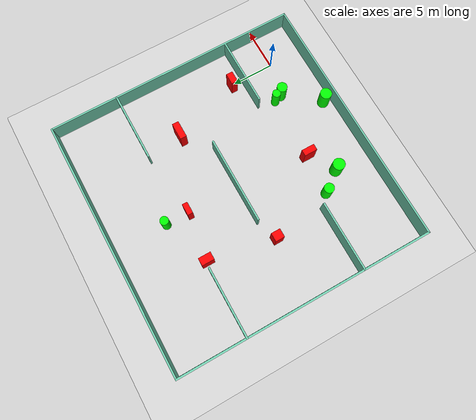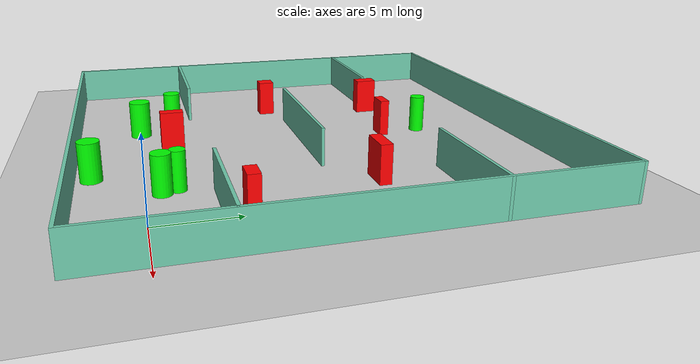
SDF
<sdf version="1.7">
 <world name="default">
  <light name="sun" type="directional">
   <pose>0 0 10 0 -0 0</pose>
   <diffuse>0.8 0.8 0.8 1</diffuse>
   <specular>0.2 0.2 0.2 1</specular>
   <attenuation>
    <range>1000</range>
    <constant>0.9</constant>
    <linear>0.01</linear>
    <quadratic>0.001</quadratic>
   </attenuation>
   <direction>-0.5 0.1 -0.9</direction>
   <spot><inner_angle>0</inner_angle><outer_angle>0</outer_angle><falloff>0</falloff></spot>
  </light>
  <model name="ground_plane">
   <static>1</static>
   <link name="link">
    <collision name="collision">
     <geometry><plane><normal>0 0 1</normal><size>100 100</size></plane></geometry>
     <surface>
      <contact><collide_bitmask>65535</collide_bitmask></contact>
      <friction><ode><mu>100</mu><mu2>50</mu2></ode></friction>
     </surface>
    </collision>
    <visual name="visual">
     <cast_shadows>0</cast_shadows>
     <geometry><plane><normal>0 0 1</normal><size>100 100</size></plane></geometry>
     <material>
      <script><uri>file://media/materials/scripts/gazebo.material</uri><name>Gazebo/Grey</name></script>
     </material>
    </visual>
   </link>
  </model>
  <gravity>0 0 -9.8</gravity>
  <magnetic_field>6e-06 2.3e-05 -4.2e-05</magnetic_field>
  <atmosphere type="adiabatic"/>
  <physics type="ode">
   <max_step_size>0.001</max_step_size>
   <real_time_factor>1</real_time_factor>
   <real_time_update_rate>1000</real_time_update_rate>
  </physics>
  <scene><ambient>0.4 0.4 0.4 1</ambient><background>0.7 0.7 0.7 1</background><shadows>1</shadows></scene>
  <spherical_coordinates>
   <surface_model>EARTH_WGS84</surface_model>
   <latitude_deg>0</latitude_deg>
   <longitude_deg>0</longitude_deg>
   <elevation>0</elevation>
   <heading_deg>0</heading_deg>
  </spherical_coordinates>
  <model name="my_base_walls">
   <link name="Wall_10">
    <collision name="Wall_10_Collision">
     <geometry><box><size>8.2 0.2 2.5</size></box></geometry>
     <pose>0 0 1.25 0 -0 0</pose>
    </collision>
    <visual name="Wall_10_Visual">
     <pose>0 0 1.25 0 -0 0</pose>
     <geometry><box><size>8.2 0.2 2.5</size></box></geometry>
     <material>
      <script><uri>file://media/materials/scripts/gazebo.material</uri><name>Gazebo/Grey</name></script>
      <ambient>0.435294 0.796078 0.67451 1</ambient>
     </material>
     <meta><layer>0</layer></meta>
    </visual>
    <pose>-11 -7 0 0 -0 0</pose>
   </link>
   <link name="Wall_12">
    <collision name="Wall_12_Collision">
     <geometry><box><size>8.2 0.2 2.5</size></box></geometry>
     <pose>0 0 1.25 0 -0 0</pose>
    </collision>
    <visual name="Wall_12_Visual">
     <pose>0 0 1.25 0 -0 0</pose>
     <geometry><box><size>8.2 0.2 2.5</size></box></geometry>
     <material>
      <script><uri>file://media/materials/scripts/gazebo.material</uri><name>Gazebo/Grey</name></script>
      <ambient>0.435294 0.796078 0.67451 1</ambient>
     </material>
     <meta><layer>0</layer></meta>
    </visual>
    <pose>-11 7 0 0 -0 0</pose>
   </link>
   <link name="Wall_14">
    <collision name="Wall_14_Collision">
     <geometry><box><size>8.2 0.2 2.5</size></box></geometry>
     <pose>0 0 1.25 0 -0 0</pose>
    </collision>
    <visual name="Wall_14_Visual">
     <pose>0 0 1.25 0 -0 0</pose>
     <geometry><box><size>8.2 0.2 2.5</size></box></geometry>
     <material>
      <script><uri>file://media/materials/scripts/gazebo.material</uri><name>Gazebo/Grey</name></script>
      <ambient>0.435294 0.796078 0.67451 1</ambient>
     </material>
     <meta><layer>0</layer></meta>
    </visual>
    <pose>11 7 0 0 -0 3.14159</pose>
   </link>
   <link name="Wall_16">
    <collision name="Wall_16_Collision">
     <geometry><box><size>10.2 0.2 2.5</size></box></geometry>
     <pose>0 0 1.25 0 -0 0</pose>
    </collision>
    <visual name="Wall_16_Visual">
     <pose>0 0 1.25 0 -0 0</pose>
     <geometry><box><size>10.2 0.2 2.5</size></box></geometry>
     <material>
      <script><uri>file://media/materials/scripts/gazebo.material</uri><name>Gazebo/Grey</name></script>
      <ambient>0.435294 0.796078 0.67451 1</ambient>
     </material>
     <meta><layer>0</layer></meta>
    </visual>
    <pose>0 0 0 0 -0 3.14159</pose>
   </link>
   <link name="Wall_2">
    <collision name="Wall_2_Collision">
     <geometry><box><size>30.2 0.2 2.5</size></box></geometry>
     <pose>0 0 1.25 0 -0 0</pose>
    </collision>
    <visual name="Wall_2_Visual">
     <pose>0 0 1.25 0 -0 0</pose>
     <geometry><box><size>30.2 0.2 2.5</size></box></geometry>
     <material>
      <script><uri>file://media/materials/scripts/gazebo.material</uri><name>Gazebo/Grey</name></script>
      <ambient>0.435294 0.796078 0.67451 1</ambient>
     </material>
     <meta><layer>0</layer></meta>
    </visual>
    <pose>0 -15 0 0 -0 3.14159</pose>
   </link>
   <link name="Wall_3">
    <collision name="Wall_3_Collision">
     <geometry><box><size>30.2 0.2 2.5</size></box></geometry>
     <pose>0 0 1.25 0 -0 0</pose>
    </collision>
    <visual name="Wall_3_Visual">
     <pose>0 0 1.25 0 -0 0</pose>
     <geometry><box><size>30.2 0.2 2.5</size></box></geometry>
     <material>
      <script><uri>file://media/materials/scripts/gazebo.material</uri><name>Gazebo/Grey</name></script>
      <ambient>0.435294 0.796078 0.67451 1</ambient>
     </material>
     <meta><layer>0</layer></meta>
    </visual>
    <pose>-15 0 0 0 -0 1.5708</pose>
   </link>
   <link name="Wall_4">
    <collision name="Wall_4_Collision">
     <geometry><box><size>30.2 0.2 2.5</size></box></geometry>
     <pose>0 0 1.25 0 -0 0</pose>
    </collision>
    <visual name="Wall_4_Visual">
     <pose>0 0 1.25 0 -0 0</pose>
     <geometry><box><size>30.2 0.2 2.5</size></box></geometry>
     <material>
      <script><uri>file://media/materials/scripts/gazebo.material</uri><name>Gazebo/Grey</name></script>
      <ambient>0.435294 0.796078 0.67451 1</ambient>
     </material>
     <meta><layer>0</layer></meta>
    </visual>
    <pose>0 15 0 0 -0 0</pose>
   </link>
   <link name="Wall_6">
    <collision name="Wall_6_Collision">
     <geometry><box><size>30.2 0.2 2.5</size></box></geometry>
     <pose>0 0 1.25 0 -0 0</pose>
    </collision>
    <visual name="Wall_6_Visual">
     <pose>0 0 1.25 0 -0 0</pose>
     <geometry><box><size>30.2 0.2 2.5</size></box></geometry>
     <material>
      <script><uri>file://media/materials/scripts/gazebo.material</uri><name>Gazebo/Grey</name></script>
      <ambient>0.435294 0.796078 0.67451 1</ambient>
     </material>
     <meta><layer>0</layer></meta>
    </visual>
    <pose>15 0 0 0 -0 1.5708</pose>
   </link>
   <link name="Wall_8">
    <collision name="Wall_8_Collision">
     <geometry><box><size>8.2 0.2 2.5</size></box></geometry>
     <pose>0 0 1.25 0 -0 0</pose>
    </collision>
    <visual name="Wall_8_Visual">
     <pose>0 0 1.25 0 -0 0</pose>
     <geometry><box><size>8.2 0.2 2.5</size></box></geometry>
     <material>
      <script><uri>file://media/materials/scripts/gazebo.material</uri><name>Gazebo/Grey</name></script>
      <ambient>0.435294 0.796078 0.67451 1</ambient>
     </material>
     <meta><layer>0</layer></meta>
    </visual>
    <pose>11 -7 0 0 -0 3.14159</pose>
   </link>
   <static>1</static>
   <pose>-11 11 0 0 -0 0</pose>
  </model>
  <model name="cylinder1">
   <static>1</static>
   <link name="link">
    <inertial>
     <mass>1</mass>
     <inertia><ixx>0.5</ixx><ixy>0</ixy><ixz>0</ixz><iyy>0.5</iyy><iyz>0</iyz><izz>1</izz></inertia>
    </inertial>
    <collision name="collision">
     <geometry><cylinder><radius>0.5807688039642923</radius><length>2.5</length></cylinder></geometry>
    </collision>
    <visual name="visual">
     <geometry><cylinder><radius>0.5807688039642923</radius><length>2.5</length></cylinder></geometry>
     <material>
      <ambient>0 1 0 1</ambient>
      <diffuse>0 1 0 1</diffuse>
      <specular>0.1 0.1 0.1 1</specular>
      <emissive>0 0 0 0</emissive>
     </material>
    </visual>
   </link>
   <pose>-16.772520329240994 2.6052054229420456 1.25 0 0 0</pose>
  </model>
  <model name="cylinder2">
   <static>1</static>
   <link name="link">
    <inertial>
     <mass>1</mass>
     <inertia><ixx>0.5</ixx><ixy>0</ixy><ixz>0</ixz><iyy>0.5</iyy><iyz>0</iyz><izz>1</izz></inertia>
    </inertial>
    <collision name="collision">
     <geometry><cylinder><radius>0.4946508077112573</radius><length>2.5</length></cylinder></geometry>
    </collision>
    <visual name="visual">
     <geometry><cylinder><radius>0.4946508077112573</radius><length>2.5</length></cylinder></geometry>
     <material>
      <ambient>0 1 0 1</ambient>
      <diffuse>0 1 0 1</diffuse>
      <specular>0.1 0.1 0.1 1</specular>
      <emissive>0 0 0 0</emissive>
     </material>
    </visual>
   </link>
   <pose>-11.298093627217106 19.786894940659774 1.25 0 0 0</pose>
  </model>
  <model name="cylinder3">
   <static>1</static>
   <link name="link">
    <inertial>
     <mass>1</mass>
     <inertia><ixx>0.5</ixx><ixy>0</ixy><ixz>0</ixz><iyy>0.5</iyy><iyz>0</iyz><izz>1</izz></inertia>
    </inertial>
    <collision name="collision">
     <geometry><cylinder><radius>0.4749889983210571</radius><length>2.5</length></cylinder></geometry>
    </collision>
    <visual name="visual">
     <geometry><cylinder><radius>0.4749889983210571</radius><length>2.5</length></cylinder></geometry>
     <material>
      <ambient>0 1 0 1</ambient>
      <diffuse>0 1 0 1</diffuse>
      <specular>0.1 0.1 0.1 1</specular>
      <emissive>0 0 0 0</emissive>
     </material>
    </visual>
   </link>
   <pose>-4.3985507732556375 1.9420759854701464 1.25 0 0 0</pose>
  </model>
  <model name="cylinder4">
   <static>1</static>
   <link name="link">
    <inertial>
     <mass>1</mass>
     <inertia><ixx>0.5</ixx><ixy>0</ixy><ixz>0</ixz><iyy>0.5</iyy><iyz>0</iyz><izz>1</izz></inertia>
    </inertial>
    <collision name="collision">
     <geometry><cylinder><radius>0.6671702245564869</radius><length>2.5</length></cylinder></geometry>
    </collision>
    <visual name="visual">
     <geometry><cylinder><radius>0.6671702245564869</radius><length>2.5</length></cylinder></geometry>
     <material>
      <ambient>0 1 0 1</ambient>
      <diffuse>0 1 0 1</diffuse>
      <specular>0.1 0.1 0.1 1</specular>
      <emissive>0 0 0 0</emissive>
     </material>
    </visual>
   </link>
   <pose>-7.146510968382481 -2.947323043953217 1.25 0 0 0</pose>
  </model>
  <model name="cylinder5">
   <static>1</static>
   <link name="link">
    <inertial>
     <mass>1</mass>
     <inertia><ixx>0.5</ixx><ixy>0</ixy><ixz>0</ixz><iyy>0.5</iyy><iyz>0</iyz><izz>1</izz></inertia>
    </inertial>
    <collision name="collision">
     <geometry><cylinder><radius>0.5961831647112298</radius><length>2.5</length></cylinder></geometry>
    </collision>
    <visual name="visual">
     <geometry><cylinder><radius>0.5961831647112298</radius><length>2.5</length></cylinder></geometry>
     <material>
      <ambient>0 1 0 1</ambient>
      <diffuse>0 1 0 1</diffuse>
      <specular>0.1 0.1 0.1 1</specular>
      <emissive>0 0 0 0</emissive>
     </material>
    </visual>
   </link>
   <pose>-4.045539762744223 0.9982596931423537 1.25 0 0 0</pose>
  </model>
  <model name="cylinder6">
   <static>1</static>
   <link name="link">
    <inertial>
     <mass>1</mass>
     <inertia><ixx>0.5</ixx><ixy>0</ixy><ixz>0</ixz><iyy>0.5</iyy><iyz>0</iyz><izz>1</izz></inertia>
    </inertial>
    <collision name="collision">
     <geometry><cylinder><radius>0.6934697558505634</radius><length>2.5</length></cylinder></geometry>
    </collision>
    <visual name="visual">
     <geometry><cylinder><radius>0.6934697558505634</radius><length>2.5</length></cylinder></geometry>
     <material>
      <ambient>0 1 0 1</ambient>
      <diffuse>0 1 0 1</diffuse>
      <specular>0.1 0.1 0.1 1</specular>
      <emissive>0 0 0 0</emissive>
     </material>
    </visual>
   </link>
   <pose>-14.987146233408964 0.24340439542879588 1.25 0 0 0</pose>
  </model>
  <model name="box1">
   <static>1</static>
   <link name="link">
    <inertial>
     <mass>1</mass>
     <inertia><ixx>0.083</ixx><ixy>0</ixy><ixz>0</ixz><iyy>0.083</iyy><iyz>0</iyz><izz>0.083</izz></inertia>
    </inertial>
    <collision name="collision">
     <geometry><box><size>1.3394812400063207 0.7662638017096495 2.5</size></box></geometry>
    </collision>
    <visual name="visual">
     <geometry><box><size>1.3394812400063207 0.7662638017096495 2.5</size></box></geometry>
     <material>
      <ambient>1 0 0 1</ambient>
      <diffuse>1 0 0 1</diffuse>
      <specular>0.1 0.1 0.1 1</specular>
      <emissive>0 0 0 0</emissive>
     </material>
    </visual>
    <sensor name="my_contact" type="contact">
     <contact><collision>box_collision</collision><topic>__default_topic__</topic></contact>
    </sensor>
   </link>
   <pose>-0.24175885769854233 5.413474690151748 1.25 0 0 0</pose>
  </model>
  <model name="box2">
   <static>1</static>
   <link name="link">
    <inertial>
     <mass>1</mass>
     <inertia><ixx>0.083</ixx><ixy>0</ixy><ixz>0</ixz><iyy>0.083</iyy><iyz>0</iyz><izz>0.083</izz></inertia>
    </inertial>
    <collision name="collision">
     <geometry><box><size>1.3398927503775582 0.6104098484036383 2.5</size></box></geometry>
    </collision>
    <visual name="visual">
     <geometry><box><size>1.3398927503775582 0.6104098484036383 2.5</size></box></geometry>
     <material>
      <ambient>1 0 0 1</ambient>
      <diffuse>1 0 0 1</diffuse>
      <specular>0.1 0.1 0.1 1</specular>
      <emissive>0 0 0 0</emissive>
     </material>
    </visual>
    <sensor name="my_contact" type="contact">
     <contact><collision>box_collision</collision><topic>__default_topic__</topic></contact>
    </sensor>
   </link>
   <pose>-11.333004424979164 17.013851680895005 1.25 0 0 0</pose>
  </model>
  <model name="box3">
   <static>1</static>
   <link name="link">
    <inertial>
     <mass>1</mass>
     <inertia><ixx>0.083</ixx><ixy>0</ixy><ixz>0</ixz><iyy>0.083</iyy><iyz>0</iyz><izz>0.083</izz></inertia>
    </inertial>
    <collision name="collision">
     <geometry><box><size>1.9795630140635103 0.7599941873703531 2.5</size></box></geometry>
    </collision>
    <visual name="visual">
     <geometry><box><size>1.9795630140635103 0.7599941873703531 2.5</size></box></geometry>
     <material>
      <ambient>1 0 0 1</ambient>
      <diffuse>1 0 0 1</diffuse>
      <specular>0.1 0.1 0.1 1</specular>
      <emissive>0 0 0 0</emissive>
     </material>
    </visual>
    <sensor name="my_contact" type="contact">
     <contact><collision>box_collision</collision><topic>__default_topic__</topic></contact>
    </sensor>
   </link>
   <pose>-2.987285620019719 13.64355685720028 1.25 0 0 0</pose>
  </model>
  <model name="box4">
   <static>1</static>
   <link name="link">
    <inertial>
     <mass>1</mass>
     <inertia><ixx>0.083</ixx><ixy>0</ixy><ixz>0</ixz><iyy>0.083</iyy><iyz>0</iyz><izz>0.083</izz></inertia>
    </inertial>
    <collision name="collision">
     <geometry><box><size>0.8900546422703719 1.4518785056637917 2.5</size></box></geometry>
    </collision>
    <visual name="visual">
     <geometry><box><size>0.8900546422703719 1.4518785056637917 2.5</size></box></geometry>
     <material>
      <ambient>1 0 0 1</ambient>
      <diffuse>1 0 0 1</diffuse>
      <specular>0.1 0.1 0.1 1</specular>
      <emissive>0 0 0 0</emissive>
     </material>
    </visual>
    <sensor name="my_contact" type="contact">
     <contact><collision>box_collision</collision><topic>__default_topic__</topic></contact>
    </sensor>
   </link>
   <pose>-17.01353419515636 17.810455054756872 1.25 0 0 0</pose>
  </model>
  <model name="box5">
   <static>1</static>
   <link name="link">
    <inertial>
     <mass>1</mass>
     <inertia><ixx>0.083</ixx><ixy>0</ixy><ixz>0</ixz><iyy>0.083</iyy><iyz>0</iyz><izz>0.083</izz></inertia>
    </inertial>
    <collision name="collision">
     <geometry><box><size>1.0093653669423892 1.0705394702858144 2.5</size></box></geometry>
    </collision>
    <visual name="visual">
     <geometry><box><size>1.0093653669423892 1.0705394702858144 2.5</size></box></geometry>
     <material>
      <ambient>1 0 0 1</ambient>
      <diffuse>1 0 0 1</diffuse>
      <specular>0.1 0.1 0.1 1</specular>
      <emissive>0 0 0 0</emissive>
     </material>
    </visual>
    <sensor name="my_contact" type="contact">
     <contact><collision>box_collision</collision><topic>__default_topic__</topic></contact>
    </sensor>
   </link>
   <pose>-18.497605380288128 10.04668832513143 1.25 0 0 0</pose>
  </model>
  <model name="box6">
   <static>1</static>
   <link name="link">
    <inertial>
     <mass>1</mass>
     <inertia><ixx>0.083</ixx><ixy>0</ixy><ixz>0</ixz><iyy>0.083</iyy><iyz>0</iyz><izz>0.083</izz></inertia>
    </inertial>
    <collision name="collision">
     <geometry><box><size>0.7269382093217919 1.5204461608879565 2.5</size></box></geometry>
    </collision>
    <visual name="visual">
     <geometry><box><size>0.7269382093217919 1.5204461608879565 2.5</size></box></geometry>
     <material>
      <ambient>1 0 0 1</ambient>
      <diffuse>1 0 0 1</diffuse>
      <specular>0.1 0.1 0.1 1</specular>
      <emissive>0 0 0 0</emissive>
     </material>
    </visual>
    <sensor name="my_contact" type="contact">
     <contact><collision>box_collision</collision><topic>__default_topic__</topic></contact>
    </sensor>
   </link>
   <pose>-12.019878333633738 2.2250069109188075 1.25 0 0 0</pose>
  </model>
 </world>
</sdf>
